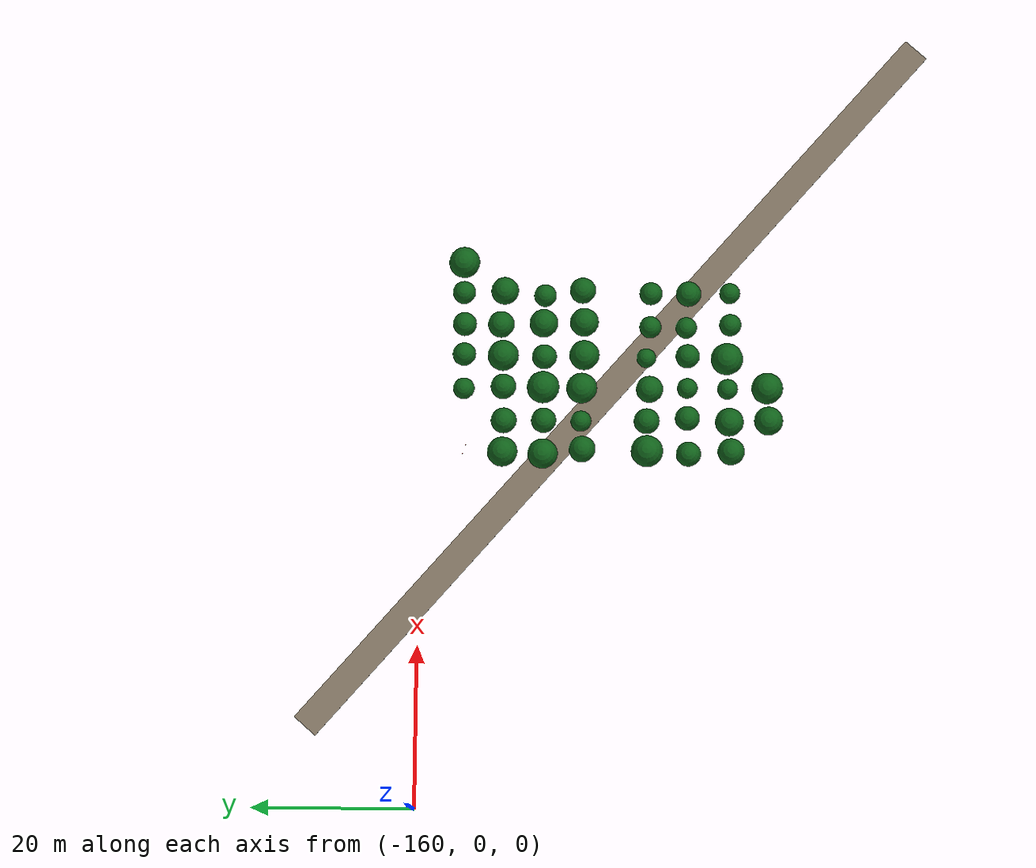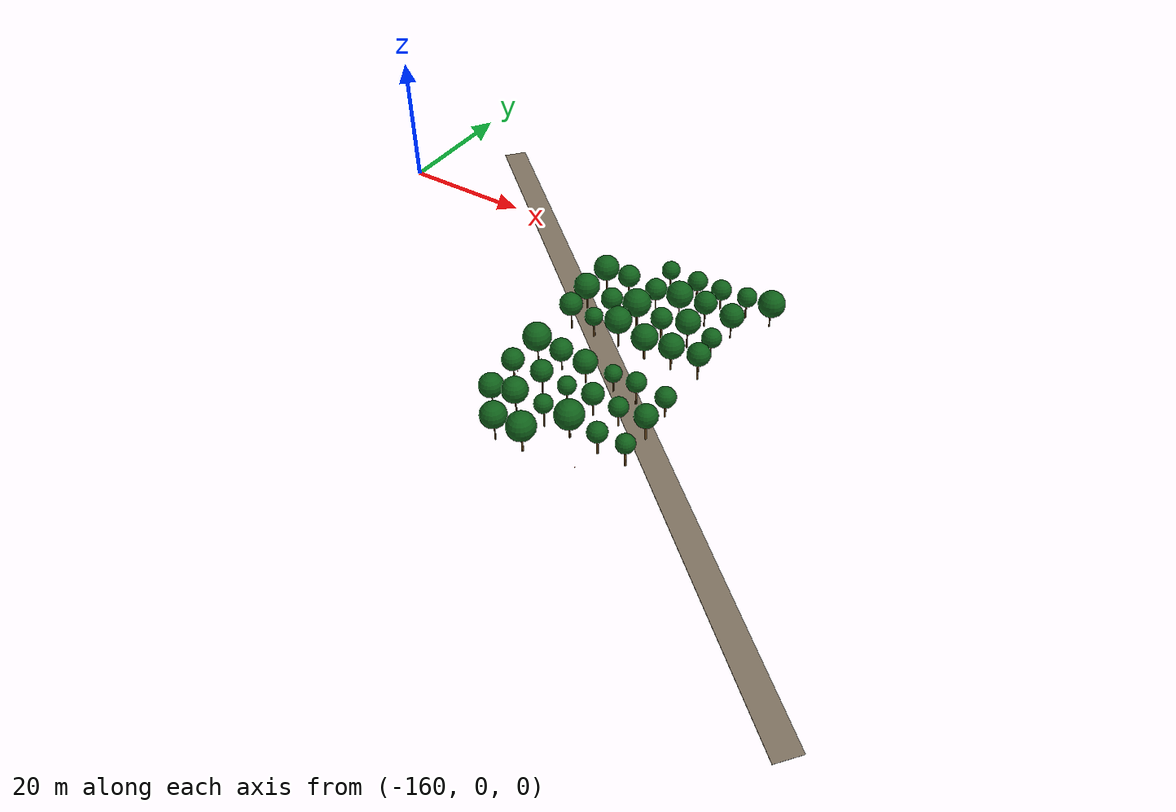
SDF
<sdf version="1.9">
 <world name="cheongsong_orchard">
  <model name="road_0">
   <static>true</static>
   <pose>-106.6 -24.3 0.02 0 0 -0.7179</pose>
   <link name="link">
    <collision name="collision">
     <geometry><box><size>115.3 3.5 0.04</size></box></geometry>
     <surface><friction><ode><mu>0.9</mu><mu2>0.9</mu2></ode></friction></surface>
    </collision>
    <visual name="visual">
     <geometry><box><size>115.3 3.5 0.04</size></box></geometry>
     <material><ambient>0.4 0.35 0.28 1</ambient><diffuse>0.5 0.45 0.38 1</diffuse></material>
    </visual>
   </link>
  </model>
  <model name="apple_tree_777">
   <static>true</static>
   <pose>-112.17 -43.07 0 0 0 0</pose>
   <link name="link">
    <collision name="trunk_col">
     <pose>0 0 1.27 0 0 0</pose>
     <geometry><cylinder><radius>0.088</radius><length>2.55</length></cylinder></geometry>
    </collision>
    <visual name="trunk_vis">
     <pose>0 0 1.27 0 0 0</pose>
     <geometry><cylinder><radius>0.088</radius><length>2.55</length></cylinder></geometry>
     <material><ambient>0.35 0.22 0.08 1</ambient><diffuse>0.45 0.30 0.12 1</diffuse></material>
    </visual>
    <collision name="canopy_col">
     <pose>0 0 4.33 0 0 0</pose>
     <geometry><sphere><radius>1.78</radius></sphere></geometry>
    </collision>
    <visual name="canopy_vis">
     <pose>0 0 4.33 0 0 0</pose>
     <geometry><sphere><radius>1.78</radius></sphere></geometry>
     <material><ambient>0.04 0.28 0.06 1</ambient><diffuse>0.06 0.38 0.10 1</diffuse></material>
    </visual>
   </link>
  </model>
  <model name="apple_tree_778">
   <static>true</static>
   <pose>-108.11 -42.90 0 0 0 0</pose>
   <link name="link">
    <collision name="trunk_col">
     <pose>0 0 1.21 0 0 0</pose>
     <geometry><cylinder><radius>0.128</radius><length>2.42</length></cylinder></geometry>
    </collision>
    <visual name="trunk_vis">
     <pose>0 0 1.21 0 0 0</pose>
     <geometry><cylinder><radius>0.128</radius><length>2.42</length></cylinder></geometry>
     <material><ambient>0.35 0.22 0.08 1</ambient><diffuse>0.45 0.30 0.12 1</diffuse></material>
    </visual>
    <collision name="canopy_col">
     <pose>0 0 4.37 0 0 0</pose>
     <geometry><sphere><radius>1.95</radius></sphere></geometry>
    </collision>
    <visual name="canopy_vis">
     <pose>0 0 4.37 0 0 0</pose>
     <geometry><sphere><radius>1.95</radius></sphere></geometry>
     <material><ambient>0.04 0.28 0.06 1</ambient><diffuse>0.06 0.38 0.10 1</diffuse></material>
    </visual>
   </link>
  </model>
  <model name="apple_tree_835">
   <static>true</static>
   <pose>-115.97 -38.48 0 0 0 0</pose>
   <link name="link">
    <collision name="trunk_col">
     <pose>0 0 1.03 0 0 0</pose>
     <geometry><cylinder><radius>0.092</radius><length>2.06</length></cylinder></geometry>
    </collision>
    <visual name="trunk_vis">
     <pose>0 0 1.03 0 0 0</pose>
     <geometry><cylinder><radius>0.092</radius><length>2.06</length></cylinder></geometry>
     <material><ambient>0.35 0.22 0.08 1</ambient><diffuse>0.45 0.30 0.12 1</diffuse></material>
    </visual>
    <collision name="canopy_col">
     <pose>0 0 3.73 0 0 0</pose>
     <geometry><sphere><radius>1.67</radius></sphere></geometry>
    </collision>
    <visual name="canopy_vis">
     <pose>0 0 3.73 0 0 0</pose>
     <geometry><sphere><radius>1.67</radius></sphere></geometry>
     <material><ambient>0.04 0.28 0.06 1</ambient><diffuse>0.06 0.38 0.10 1</diffuse></material>
    </visual>
   </link>
  </model>
  <model name="apple_tree_836">
   <static>true</static>
   <pose>-112.40 -38.22 0 0 0 0</pose>
   <link name="link">
    <collision name="trunk_col">
     <pose>0 0 1.37 0 0 0</pose>
     <geometry><cylinder><radius>0.098</radius><length>2.74</length></cylinder></geometry>
    </collision>
    <visual name="trunk_vis">
     <pose>0 0 1.37 0 0 0</pose>
     <geometry><cylinder><radius>0.098</radius><length>2.74</length></cylinder></geometry>
     <material><ambient>0.35 0.22 0.08 1</ambient><diffuse>0.45 0.30 0.12 1</diffuse></material>
    </visual>
    <collision name="canopy_col">
     <pose>0 0 4.50 0 0 0</pose>
     <geometry><sphere><radius>1.76</radius></sphere></geometry>
    </collision>
    <visual name="canopy_vis">
     <pose>0 0 4.50 0 0 0</pose>
     <geometry><sphere><radius>1.76</radius></sphere></geometry>
     <material><ambient>0.04 0.28 0.06 1</ambient><diffuse>0.06 0.38 0.10 1</diffuse></material>
    </visual>
   </link>
  </model>
  <model name="apple_tree_837">
   <static>true</static>
   <pose>-108.20 -38.01 0 0 0 0</pose>
   <link name="link">
    <collision name="trunk_col">
     <pose>0 0 1.40 0 0 0</pose>
     <geometry><cylinder><radius>0.104</radius><length>2.79</length></cylinder></geometry>
    </collision>
    <visual name="trunk_vis">
     <pose>0 0 1.40 0 0 0</pose>
     <geometry><cylinder><radius>0.104</radius><length>2.79</length></cylinder></geometry>
     <material><ambient>0.35 0.22 0.08 1</ambient><diffuse>0.45 0.30 0.12 1</diffuse></material>
    </visual>
    <collision name="canopy_col">
     <pose>0 0 4.06 0 0 0</pose>
     <geometry><sphere><radius>1.27</radius></sphere></geometry>
    </collision>
    <visual name="canopy_vis">
     <pose>0 0 4.06 0 0 0</pose>
     <geometry><sphere><radius>1.27</radius></sphere></geometry>
     <material><ambient>0.04 0.28 0.06 1</ambient><diffuse>0.06 0.38 0.10 1</diffuse></material>
    </visual>
   </link>
  </model>
  <model name="apple_tree_838">
   <static>true</static>
   <pose>-104.40 -37.93 0 0 0 0</pose>
   <link name="link">
    <collision name="trunk_col">
     <pose>0 0 1.05 0 0 0</pose>
     <geometry><cylinder><radius>0.115</radius><length>2.10</length></cylinder></geometry>
    </collision>
    <visual name="trunk_vis">
     <pose>0 0 1.05 0 0 0</pose>
     <geometry><cylinder><radius>0.115</radius><length>2.10</length></cylinder></geometry>
     <material><ambient>0.35 0.22 0.08 1</ambient><diffuse>0.45 0.30 0.12 1</diffuse></material>
    </visual>
    <collision name="canopy_col">
     <pose>0 0 4.10 0 0 0</pose>
     <geometry><sphere><radius>1.99</radius></sphere></geometry>
    </collision>
    <visual name="canopy_vis">
     <pose>0 0 4.10 0 0 0</pose>
     <geometry><sphere><radius>1.99</radius></sphere></geometry>
     <material><ambient>0.04 0.28 0.06 1</ambient><diffuse>0.06 0.38 0.10 1</diffuse></material>
    </visual>
   </link>
  </model>
  <model name="apple_tree_839">
   <static>true</static>
   <pose>-100.03 -38.35 0 0 0 0</pose>
   <link name="link">
    <collision name="trunk_col">
     <pose>0 0 1.19 0 0 0</pose>
     <geometry><cylinder><radius>0.125</radius><length>2.38</length></cylinder></geometry>
    </collision>
    <visual name="trunk_vis">
     <pose>0 0 1.19 0 0 0</pose>
     <geometry><cylinder><radius>0.125</radius><length>2.38</length></cylinder></geometry>
     <material><ambient>0.35 0.22 0.08 1</ambient><diffuse>0.45 0.30 0.12 1</diffuse></material>
    </visual>
    <collision name="canopy_col">
     <pose>0 0 3.75 0 0 0</pose>
     <geometry><sphere><radius>1.37</radius></sphere></geometry>
    </collision>
    <visual name="canopy_vis">
     <pose>0 0 3.75 0 0 0</pose>
     <geometry><sphere><radius>1.37</radius></sphere></geometry>
     <material><ambient>0.04 0.28 0.06 1</ambient><diffuse>0.06 0.38 0.10 1</diffuse></material>
    </visual>
   </link>
  </model>
  <model name="apple_tree_840">
   <static>true</static>
   <pose>-96.05 -38.28 0 0 0 0</pose>
   <link name="link">
    <collision name="trunk_col">
     <pose>0 0 1.29 0 0 0</pose>
     <geometry><cylinder><radius>0.133</radius><length>2.58</length></cylinder></geometry>
    </collision>
    <visual name="trunk_vis">
     <pose>0 0 1.29 0 0 0</pose>
     <geometry><cylinder><radius>0.133</radius><length>2.58</length></cylinder></geometry>
     <material><ambient>0.35 0.22 0.08 1</ambient><diffuse>0.45 0.30 0.12 1</diffuse></material>
    </visual>
    <collision name="canopy_col">
     <pose>0 0 3.87 0 0 0</pose>
     <geometry><sphere><radius>1.29</radius></sphere></geometry>
    </collision>
    <visual name="canopy_vis">
     <pose>0 0 3.87 0 0 0</pose>
     <geometry><sphere><radius>1.29</radius></sphere></geometry>
     <material><ambient>0.04 0.28 0.06 1</ambient><diffuse>0.06 0.38 0.10 1</diffuse></material>
    </visual>
   </link>
  </model>
  <model name="apple_tree_890">
   <static>true</static>
   <pose>-116.36 -33.21 0 0 0 0</pose>
   <link name="link">
    <collision name="trunk_col">
     <pose>0 0 1.20 0 0 0</pose>
     <geometry><cylinder><radius>0.081</radius><length>2.40</length></cylinder></geometry>
    </collision>
    <visual name="trunk_vis">
     <pose>0 0 1.20 0 0 0</pose>
     <geometry><cylinder><radius>0.081</radius><length>2.40</length></cylinder></geometry>
     <material><ambient>0.35 0.22 0.08 1</ambient><diffuse>0.45 0.30 0.12 1</diffuse></material>
    </visual>
    <collision name="canopy_col">
     <pose>0 0 3.94 0 0 0</pose>
     <geometry><sphere><radius>1.54</radius></sphere></geometry>
    </collision>
    <visual name="canopy_vis">
     <pose>0 0 3.94 0 0 0</pose>
     <geometry><sphere><radius>1.54</radius></sphere></geometry>
     <material><ambient>0.04 0.28 0.06 1</ambient><diffuse>0.06 0.38 0.10 1</diffuse></material>
    </visual>
   </link>
  </model>
  <model name="apple_tree_891">
   <static>true</static>
   <pose>-111.89 -33.05 0 0 0 0</pose>
   <link name="link">
    <collision name="trunk_col">
     <pose>0 0 1.22 0 0 0</pose>
     <geometry><cylinder><radius>0.110</radius><length>2.44</length></cylinder></geometry>
    </collision>
    <visual name="trunk_vis">
     <pose>0 0 1.22 0 0 0</pose>
     <geometry><cylinder><radius>0.110</radius><length>2.44</length></cylinder></geometry>
     <material><ambient>0.35 0.22 0.08 1</ambient><diffuse>0.45 0.30 0.12 1</diffuse></material>
    </visual>
    <collision name="canopy_col">
     <pose>0 0 3.96 0 0 0</pose>
     <geometry><sphere><radius>1.52</radius></sphere></geometry>
    </collision>
    <visual name="canopy_vis">
     <pose>0 0 3.96 0 0 0</pose>
     <geometry><sphere><radius>1.52</radius></sphere></geometry>
     <material><ambient>0.04 0.28 0.06 1</ambient><diffuse>0.06 0.38 0.10 1</diffuse></material>
    </visual>
   </link>
  </model>
  <model name="apple_tree_892">
   <static>true</static>
   <pose>-108.00 -33.07 0 0 0 0</pose>
   <link name="link">
    <collision name="trunk_col">
     <pose>0 0 1.02 0 0 0</pose>
     <geometry><cylinder><radius>0.115</radius><length>2.05</length></cylinder></geometry>
    </collision>
    <visual name="trunk_vis">
     <pose>0 0 1.02 0 0 0</pose>
     <geometry><cylinder><radius>0.115</radius><length>2.05</length></cylinder></geometry>
     <material><ambient>0.35 0.22 0.08 1</ambient><diffuse>0.45 0.30 0.12 1</diffuse></material>
    </visual>
    <collision name="canopy_col">
     <pose>0 0 3.31 0 0 0</pose>
     <geometry><sphere><radius>1.27</radius></sphere></geometry>
    </collision>
    <visual name="canopy_vis">
     <pose>0 0 3.31 0 0 0</pose>
     <geometry><sphere><radius>1.27</radius></sphere></geometry>
     <material><ambient>0.04 0.28 0.06 1</ambient><diffuse>0.06 0.38 0.10 1</diffuse></material>
    </visual>
   </link>
  </model>
  <model name="apple_tree_893">
   <static>true</static>
   <pose>-104.04 -33.07 0 0 0 0</pose>
   <link name="link">
    <collision name="trunk_col">
     <pose>0 0 1.17 0 0 0</pose>
     <geometry><cylinder><radius>0.095</radius><length>2.35</length></cylinder></geometry>
    </collision>
    <visual name="trunk_vis">
     <pose>0 0 1.17 0 0 0</pose>
     <geometry><cylinder><radius>0.095</radius><length>2.35</length></cylinder></geometry>
     <material><ambient>0.35 0.22 0.08 1</ambient><diffuse>0.45 0.30 0.12 1</diffuse></material>
    </visual>
    <collision name="canopy_col">
     <pose>0 0 3.83 0 0 0</pose>
     <geometry><sphere><radius>1.49</radius></sphere></geometry>
    </collision>
    <visual name="canopy_vis">
     <pose>0 0 3.83 0 0 0</pose>
     <geometry><sphere><radius>1.49</radius></sphere></geometry>
     <material><ambient>0.04 0.28 0.06 1</ambient><diffuse>0.06 0.38 0.10 1</diffuse></material>
    </visual>
   </link>
  </model>
  <model name="apple_tree_894">
   <static>true</static>
   <pose>-100.35 -32.89 0 0 0 0</pose>
   <link name="link">
    <collision name="trunk_col">
     <pose>0 0 0.98 0 0 0</pose>
     <geometry><cylinder><radius>0.127</radius><length>1.97</length></cylinder></geometry>
    </collision>
    <visual name="trunk_vis">
     <pose>0 0 0.98 0 0 0</pose>
     <geometry><cylinder><radius>0.127</radius><length>1.97</length></cylinder></geometry>
     <material><ambient>0.35 0.22 0.08 1</ambient><diffuse>0.45 0.30 0.12 1</diffuse></material>
    </visual>
    <collision name="canopy_col">
     <pose>0 0 3.29 0 0 0</pose>
     <geometry><sphere><radius>1.33</radius></sphere></geometry>
    </collision>
    <visual name="canopy_vis">
     <pose>0 0 3.29 0 0 0</pose>
     <geometry><sphere><radius>1.33</radius></sphere></geometry>
     <material><ambient>0.04 0.28 0.06 1</ambient><diffuse>0.06 0.38 0.10 1</diffuse></material>
    </visual>
   </link>
  </model>
  <model name="apple_tree_895">
   <static>true</static>
   <pose>-96.21 -33.15 0 0 0 0</pose>
   <link name="link">
    <collision name="trunk_col">
     <pose>0 0 1.26 0 0 0</pose>
     <geometry><cylinder><radius>0.148</radius><length>2.52</length></cylinder></geometry>
    </collision>
    <visual name="trunk_vis">
     <pose>0 0 1.26 0 0 0</pose>
     <geometry><cylinder><radius>0.148</radius><length>2.52</length></cylinder></geometry>
     <material><ambient>0.35 0.22 0.08 1</ambient><diffuse>0.45 0.30 0.12 1</diffuse></material>
    </visual>
    <collision name="canopy_col">
     <pose>0 0 4.09 0 0 0</pose>
     <geometry><sphere><radius>1.57</radius></sphere></geometry>
    </collision>
    <visual name="canopy_vis">
     <pose>0 0 4.09 0 0 0</pose>
     <geometry><sphere><radius>1.57</radius></sphere></geometry>
     <material><ambient>0.04 0.28 0.06 1</ambient><diffuse>0.06 0.38 0.10 1</diffuse></material>
    </visual>
   </link>
  </model>
  <model name="apple_tree_942">
   <static>true</static>
   <pose>-116.07 -28.08 0 0 0 0</pose>
   <link name="link">
    <collision name="trunk_col">
     <pose>0 0 1.12 0 0 0</pose>
     <geometry><cylinder><radius>0.095</radius><length>2.25</length></cylinder></geometry>
    </collision>
    <visual name="trunk_vis">
     <pose>0 0 1.12 0 0 0</pose>
     <geometry><cylinder><radius>0.095</radius><length>2.25</length></cylinder></geometry>
     <material><ambient>0.35 0.22 0.08 1</ambient><diffuse>0.45 0.30 0.12 1</diffuse></material>
    </visual>
    <collision name="canopy_col">
     <pose>0 0 4.23 0 0 0</pose>
     <geometry><sphere><radius>1.98</radius></sphere></geometry>
    </collision>
    <visual name="canopy_vis">
     <pose>0 0 4.23 0 0 0</pose>
     <geometry><sphere><radius>1.98</radius></sphere></geometry>
     <material><ambient>0.04 0.28 0.06 1</ambient><diffuse>0.06 0.38 0.10 1</diffuse></material>
    </visual>
   </link>
  </model>
  <model name="apple_tree_943">
   <static>true</static>
   <pose>-112.23 -28.03 0 0 0 0</pose>
   <link name="link">
    <collision name="trunk_col">
     <pose>0 0 1.03 0 0 0</pose>
     <geometry><cylinder><radius>0.081</radius><length>2.06</length></cylinder></geometry>
    </collision>
    <visual name="trunk_vis">
     <pose>0 0 1.03 0 0 0</pose>
     <geometry><cylinder><radius>0.081</radius><length>2.06</length></cylinder></geometry>
     <material><ambient>0.35 0.22 0.08 1</ambient><diffuse>0.45 0.30 0.12 1</diffuse></material>
    </visual>
    <collision name="canopy_col">
     <pose>0 0 3.65 0 0 0</pose>
     <geometry><sphere><radius>1.59</radius></sphere></geometry>
    </collision>
    <visual name="canopy_vis">
     <pose>0 0 3.65 0 0 0</pose>
     <geometry><sphere><radius>1.59</radius></sphere></geometry>
     <material><ambient>0.04 0.28 0.06 1</ambient><diffuse>0.06 0.38 0.10 1</diffuse></material>
    </visual>
   </link>
  </model>
  <model name="apple_tree_944">
   <static>true</static>
   <pose>-108.23 -28.37 0 0 0 0</pose>
   <link name="link">
    <collision name="trunk_col">
     <pose>0 0 0.99 0 0 0</pose>
     <geometry><cylinder><radius>0.126</radius><length>1.98</length></cylinder></geometry>
    </collision>
    <visual name="trunk_vis">
     <pose>0 0 0.99 0 0 0</pose>
     <geometry><cylinder><radius>0.126</radius><length>1.98</length></cylinder></geometry>
     <material><ambient>0.35 0.22 0.08 1</ambient><diffuse>0.45 0.30 0.12 1</diffuse></material>
    </visual>
    <collision name="canopy_col">
     <pose>0 0 3.66 0 0 0</pose>
     <geometry><sphere><radius>1.67</radius></sphere></geometry>
    </collision>
    <visual name="canopy_vis">
     <pose>0 0 3.66 0 0 0</pose>
     <geometry><sphere><radius>1.67</radius></sphere></geometry>
     <material><ambient>0.04 0.28 0.06 1</ambient><diffuse>0.06 0.38 0.10 1</diffuse></material>
    </visual>
   </link>
  </model>
  <model name="apple_tree_945">
   <static>true</static>
   <pose>-104.21 -27.94 0 0 0 0</pose>
   <link name="link">
    <collision name="trunk_col">
     <pose>0 0 1.00 0 0 0</pose>
     <geometry><cylinder><radius>0.101</radius><length>1.99</length></cylinder></geometry>
    </collision>
    <visual name="trunk_vis">
     <pose>0 0 1.00 0 0 0</pose>
     <geometry><cylinder><radius>0.101</radius><length>1.99</length></cylinder></geometry>
     <material><ambient>0.35 0.22 0.08 1</ambient><diffuse>0.45 0.30 0.12 1</diffuse></material>
    </visual>
    <collision name="canopy_col">
     <pose>0 0 3.20 0 0 0</pose>
     <geometry><sphere><radius>1.21</radius></sphere></geometry>
    </collision>
    <visual name="canopy_vis">
     <pose>0 0 3.20 0 0 0</pose>
     <geometry><sphere><radius>1.21</radius></sphere></geometry>
     <material><ambient>0.04 0.28 0.06 1</ambient><diffuse>0.06 0.38 0.10 1</diffuse></material>
    </visual>
   </link>
  </model>
  <model name="apple_tree_946">
   <static>true</static>
   <pose>-100.43 -28.42 0 0 0 0</pose>
   <link name="link">
    <collision name="trunk_col">
     <pose>0 0 1.27 0 0 0</pose>
     <geometry><cylinder><radius>0.121</radius><length>2.54</length></cylinder></geometry>
    </collision>
    <visual name="trunk_vis">
     <pose>0 0 1.27 0 0 0</pose>
     <geometry><cylinder><radius>0.121</radius><length>2.54</length></cylinder></geometry>
     <material><ambient>0.35 0.22 0.08 1</ambient><diffuse>0.45 0.30 0.12 1</diffuse></material>
    </visual>
    <collision name="canopy_col">
     <pose>0 0 3.90 0 0 0</pose>
     <geometry><sphere><radius>1.36</radius></sphere></geometry>
    </collision>
    <visual name="canopy_vis">
     <pose>0 0 3.90 0 0 0</pose>
     <geometry><sphere><radius>1.36</radius></sphere></geometry>
     <material><ambient>0.04 0.28 0.06 1</ambient><diffuse>0.06 0.38 0.10 1</diffuse></material>
    </visual>
   </link>
  </model>
  <model name="apple_tree_947">
   <static>true</static>
   <pose>-96.09 -28.47 0 0 0 0</pose>
   <link name="link">
    <collision name="trunk_col">
     <pose>0 0 1.05 0 0 0</pose>
     <geometry><cylinder><radius>0.132</radius><length>2.09</length></cylinder></geometry>
    </collision>
    <visual name="trunk_vis">
     <pose>0 0 1.05 0 0 0</pose>
     <geometry><cylinder><radius>0.132</radius><length>2.09</length></cylinder></geometry>
     <material><ambient>0.35 0.22 0.08 1</ambient><diffuse>0.45 0.30 0.12 1</diffuse></material>
    </visual>
    <collision name="canopy_col">
     <pose>0 0 3.51 0 0 0</pose>
     <geometry><sphere><radius>1.42</radius></sphere></geometry>
    </collision>
    <visual name="canopy_vis">
     <pose>0 0 3.51 0 0 0</pose>
     <geometry><sphere><radius>1.42</radius></sphere></geometry>
     <material><ambient>0.04 0.28 0.06 1</ambient><diffuse>0.06 0.38 0.10 1</diffuse></material>
    </visual>
   </link>
  </model>
  <model name="apple_tree_999">
   <static>true</static>
   <pose>-115.92 -20.08 0 0 0 0</pose>
   <link name="link">
    <collision name="trunk_col">
     <pose>0 0 1.36 0 0 0</pose>
     <geometry><cylinder><radius>0.097</radius><length>2.72</length></cylinder></geometry>
    </collision>
    <visual name="trunk_vis">
     <pose>0 0 1.36 0 0 0</pose>
     <geometry><cylinder><radius>0.097</radius><length>2.72</length></cylinder></geometry>
     <material><ambient>0.35 0.22 0.08 1</ambient><diffuse>0.45 0.30 0.12 1</diffuse></material>
    </visual>
    <collision name="canopy_col">
     <pose>0 0 4.36 0 0 0</pose>
     <geometry><sphere><radius>1.64</radius></sphere></geometry>
    </collision>
    <visual name="canopy_vis">
     <pose>0 0 4.36 0 0 0</pose>
     <geometry><sphere><radius>1.64</radius></sphere></geometry>
     <material><ambient>0.04 0.28 0.06 1</ambient><diffuse>0.06 0.38 0.10 1</diffuse></material>
    </visual>
   </link>
  </model>
  <model name="apple_tree_1000">
   <static>true</static>
   <pose>-112.30 -19.91 0 0 0 0</pose>
   <link name="link">
    <collision name="trunk_col">
     <pose>0 0 1.15 0 0 0</pose>
     <geometry><cylinder><radius>0.137</radius><length>2.30</length></cylinder></geometry>
    </collision>
    <visual name="trunk_vis">
     <pose>0 0 1.15 0 0 0</pose>
     <geometry><cylinder><radius>0.137</radius><length>2.30</length></cylinder></geometry>
     <material><ambient>0.35 0.22 0.08 1</ambient><diffuse>0.45 0.30 0.12 1</diffuse></material>
    </visual>
    <collision name="canopy_col">
     <pose>0 0 3.60 0 0 0</pose>
     <geometry><sphere><radius>1.30</radius></sphere></geometry>
    </collision>
    <visual name="canopy_vis">
     <pose>0 0 3.60 0 0 0</pose>
     <geometry><sphere><radius>1.30</radius></sphere></geometry>
     <material><ambient>0.04 0.28 0.06 1</ambient><diffuse>0.06 0.38 0.10 1</diffuse></material>
    </visual>
   </link>
  </model>
  <model name="apple_tree_1001">
   <static>true</static>
   <pose>-108.36 -19.96 0 0 0 0</pose>
   <link name="link">
    <collision name="trunk_col">
     <pose>0 0 1.42 0 0 0</pose>
     <geometry><cylinder><radius>0.124</radius><length>2.84</length></cylinder></geometry>
    </collision>
    <visual name="trunk_vis">
     <pose>0 0 1.42 0 0 0</pose>
     <geometry><cylinder><radius>0.124</radius><length>2.84</length></cylinder></geometry>
     <material><ambient>0.35 0.22 0.08 1</ambient><diffuse>0.45 0.30 0.12 1</diffuse></material>
    </visual>
    <collision name="canopy_col">
     <pose>0 0 4.75 0 0 0</pose>
     <geometry><sphere><radius>1.90</radius></sphere></geometry>
    </collision>
    <visual name="canopy_vis">
     <pose>0 0 4.75 0 0 0</pose>
     <geometry><sphere><radius>1.90</radius></sphere></geometry>
     <material><ambient>0.04 0.28 0.06 1</ambient><diffuse>0.06 0.38 0.10 1</diffuse></material>
    </visual>
   </link>
  </model>
  <model name="apple_tree_1002">
   <static>true</static>
   <pose>-104.03 -20.25 0 0 0 0</pose>
   <link name="link">
    <collision name="trunk_col">
     <pose>0 0 0.99 0 0 0</pose>
     <geometry><cylinder><radius>0.141</radius><length>1.98</length></cylinder></geometry>
    </collision>
    <visual name="trunk_vis">
     <pose>0 0 0.99 0 0 0</pose>
     <geometry><cylinder><radius>0.141</radius><length>1.98</length></cylinder></geometry>
     <material><ambient>0.35 0.22 0.08 1</ambient><diffuse>0.45 0.30 0.12 1</diffuse></material>
    </visual>
    <collision name="canopy_col">
     <pose>0 0 3.84 0 0 0</pose>
     <geometry><sphere><radius>1.86</radius></sphere></geometry>
    </collision>
    <visual name="canopy_vis">
     <pose>0 0 3.84 0 0 0</pose>
     <geometry><sphere><radius>1.86</radius></sphere></geometry>
     <material><ambient>0.04 0.28 0.06 1</ambient><diffuse>0.06 0.38 0.10 1</diffuse></material>
    </visual>
   </link>
  </model>
  <model name="apple_tree_1003">
   <static>true</static>
   <pose>-99.93 -20.21 0 0 0 0</pose>
   <link name="link">
    <collision name="trunk_col">
     <pose>0 0 1.18 0 0 0</pose>
     <geometry><cylinder><radius>0.139</radius><length>2.35</length></cylinder></geometry>
    </collision>
    <visual name="trunk_vis">
     <pose>0 0 1.18 0 0 0</pose>
     <geometry><cylinder><radius>0.139</radius><length>2.35</length></cylinder></geometry>
     <material><ambient>0.35 0.22 0.08 1</ambient><diffuse>0.45 0.30 0.12 1</diffuse></material>
    </visual>
    <collision name="canopy_col">
     <pose>0 0 4.13 0 0 0</pose>
     <geometry><sphere><radius>1.77</radius></sphere></geometry>
    </collision>
    <visual name="canopy_vis">
     <pose>0 0 4.13 0 0 0</pose>
     <geometry><sphere><radius>1.77</radius></sphere></geometry>
     <material><ambient>0.04 0.28 0.06 1</ambient><diffuse>0.06 0.38 0.10 1</diffuse></material>
    </visual>
   </link>
  </model>
  <model name="apple_tree_1004">
   <static>true</static>
   <pose>-95.96 -20.00 0 0 0 0</pose>
   <link name="link">
    <collision name="trunk_col">
     <pose>0 0 1.38 0 0 0</pose>
     <geometry><cylinder><radius>0.129</radius><length>2.75</length></cylinder></geometry>
    </collision>
    <visual name="trunk_vis">
     <pose>0 0 1.38 0 0 0</pose>
     <geometry><cylinder><radius>0.129</radius><length>2.75</length></cylinder></geometry>
     <material><ambient>0.35 0.22 0.08 1</ambient><diffuse>0.45 0.30 0.12 1</diffuse></material>
    </visual>
    <collision name="canopy_col">
     <pose>0 0 4.36 0 0 0</pose>
     <geometry><sphere><radius>1.61</radius></sphere></geometry>
    </collision>
    <visual name="canopy_vis">
     <pose>0 0 4.36 0 0 0</pose>
     <geometry><sphere><radius>1.61</radius></sphere></geometry>
     <material><ambient>0.04 0.28 0.06 1</ambient><diffuse>0.06 0.38 0.10 1</diffuse></material>
    </visual>
   </link>
  </model>
  <model name="apple_tree_1058">
   <static>true</static>
   <pose>-116.48 -15.22 0 0 0 0</pose>
   <link name="link">
    <collision name="trunk_col">
     <pose>0 0 1.09 0 0 0</pose>
     <geometry><cylinder><radius>0.101</radius><length>2.19</length></cylinder></geometry>
    </collision>
    <visual name="trunk_vis">
     <pose>0 0 1.09 0 0 0</pose>
     <geometry><cylinder><radius>0.101</radius><length>2.19</length></cylinder></geometry>
     <material><ambient>0.35 0.22 0.08 1</ambient><diffuse>0.45 0.30 0.12 1</diffuse></material>
    </visual>
    <collision name="canopy_col">
     <pose>0 0 4.05 0 0 0</pose>
     <geometry><sphere><radius>1.86</radius></sphere></geometry>
    </collision>
    <visual name="canopy_vis">
     <pose>0 0 4.05 0 0 0</pose>
     <geometry><sphere><radius>1.86</radius></sphere></geometry>
     <material><ambient>0.04 0.28 0.06 1</ambient><diffuse>0.06 0.38 0.10 1</diffuse></material>
    </visual>
   </link>
  </model>
  <model name="apple_tree_1059">
   <static>true</static>
   <pose>-112.25 -15.29 0 0 0 0</pose>
   <link name="link">
    <collision name="trunk_col">
     <pose>0 0 1.03 0 0 0</pose>
     <geometry><cylinder><radius>0.139</radius><length>2.05</length></cylinder></geometry>
    </collision>
    <visual name="trunk_vis">
     <pose>0 0 1.03 0 0 0</pose>
     <geometry><cylinder><radius>0.139</radius><length>2.05</length></cylinder></geometry>
     <material><ambient>0.35 0.22 0.08 1</ambient><diffuse>0.45 0.30 0.12 1</diffuse></material>
    </visual>
    <collision name="canopy_col">
     <pose>0 0 3.60 0 0 0</pose>
     <geometry><sphere><radius>1.55</radius></sphere></geometry>
    </collision>
    <visual name="canopy_vis">
     <pose>0 0 3.60 0 0 0</pose>
     <geometry><sphere><radius>1.55</radius></sphere></geometry>
     <material><ambient>0.04 0.28 0.06 1</ambient><diffuse>0.06 0.38 0.10 1</diffuse></material>
    </visual>
   </link>
  </model>
  <model name="apple_tree_1060">
   <static>true</static>
   <pose>-108.24 -15.19 0 0 0 0</pose>
   <link name="link">
    <collision name="trunk_col">
     <pose>0 0 1.26 0 0 0</pose>
     <geometry><cylinder><radius>0.131</radius><length>2.51</length></cylinder></geometry>
    </collision>
    <visual name="trunk_vis">
     <pose>0 0 1.26 0 0 0</pose>
     <geometry><cylinder><radius>0.131</radius><length>2.51</length></cylinder></geometry>
     <material><ambient>0.35 0.22 0.08 1</ambient><diffuse>0.45 0.30 0.12 1</diffuse></material>
    </visual>
    <collision name="canopy_col">
     <pose>0 0 4.51 0 0 0</pose>
     <geometry><sphere><radius>2.00</radius></sphere></geometry>
    </collision>
    <visual name="canopy_vis">
     <pose>0 0 4.51 0 0 0</pose>
     <geometry><sphere><radius>2.00</radius></sphere></geometry>
     <material><ambient>0.04 0.28 0.06 1</ambient><diffuse>0.06 0.38 0.10 1</diffuse></material>
    </visual>
   </link>
  </model>
  <model name="apple_tree_1061">
   <static>true</static>
   <pose>-104.24 -15.30 0 0 0 0</pose>
   <link name="link">
    <collision name="trunk_col">
     <pose>0 0 1.01 0 0 0</pose>
     <geometry><cylinder><radius>0.143</radius><length>2.01</length></cylinder></geometry>
    </collision>
    <visual name="trunk_vis">
     <pose>0 0 1.01 0 0 0</pose>
     <geometry><cylinder><radius>0.143</radius><length>2.01</length></cylinder></geometry>
     <material><ambient>0.35 0.22 0.08 1</ambient><diffuse>0.45 0.30 0.12 1</diffuse></material>
    </visual>
    <collision name="canopy_col">
     <pose>0 0 3.55 0 0 0</pose>
     <geometry><sphere><radius>1.53</radius></sphere></geometry>
    </collision>
    <visual name="canopy_vis">
     <pose>0 0 3.55 0 0 0</pose>
     <geometry><sphere><radius>1.53</radius></sphere></geometry>
     <material><ambient>0.04 0.28 0.06 1</ambient><diffuse>0.06 0.38 0.10 1</diffuse></material>
    </visual>
   </link>
  </model>
  <model name="apple_tree_1062">
   <static>true</static>
   <pose>-100.21 -15.19 0 0 0 0</pose>
   <link name="link">
    <collision name="trunk_col">
     <pose>0 0 1.43 0 0 0</pose>
     <geometry><cylinder><radius>0.104</radius><length>2.87</length></cylinder></geometry>
    </collision>
    <visual name="trunk_vis">
     <pose>0 0 1.43 0 0 0</pose>
     <geometry><cylinder><radius>0.104</radius><length>2.87</length></cylinder></geometry>
     <material><ambient>0.35 0.22 0.08 1</ambient><diffuse>0.45 0.30 0.12 1</diffuse></material>
    </visual>
    <collision name="canopy_col">
     <pose>0 0 4.62 0 0 0</pose>
     <geometry><sphere><radius>1.76</radius></sphere></geometry>
    </collision>
    <visual name="canopy_vis">
     <pose>0 0 4.62 0 0 0</pose>
     <geometry><sphere><radius>1.76</radius></sphere></geometry>
     <material><ambient>0.04 0.28 0.06 1</ambient><diffuse>0.06 0.38 0.10 1</diffuse></material>
    </visual>
   </link>
  </model>
  <model name="apple_tree_1063">
   <static>true</static>
   <pose>-96.48 -15.32 0 0 0 0</pose>
   <link name="link">
    <collision name="trunk_col">
     <pose>0 0 1.07 0 0 0</pose>
     <geometry><cylinder><radius>0.104</radius><length>2.14</length></cylinder></geometry>
    </collision>
    <visual name="trunk_vis">
     <pose>0 0 1.07 0 0 0</pose>
     <geometry><cylinder><radius>0.104</radius><length>2.14</length></cylinder></geometry>
     <material><ambient>0.35 0.22 0.08 1</ambient><diffuse>0.45 0.30 0.12 1</diffuse></material>
    </visual>
    <collision name="canopy_col">
     <pose>0 0 3.52 0 0 0</pose>
     <geometry><sphere><radius>1.39</radius></sphere></geometry>
    </collision>
    <visual name="canopy_vis">
     <pose>0 0 3.52 0 0 0</pose>
     <geometry><sphere><radius>1.39</radius></sphere></geometry>
     <material><ambient>0.04 0.28 0.06 1</ambient><diffuse>0.06 0.38 0.10 1</diffuse></material>
    </visual>
   </link>
  </model>
  <model name="apple_tree_1115">
   <static>true</static>
   <pose>-116.30 -10.24 0 0 0 0</pose>
   <link name="link">
    <collision name="trunk_col">
     <pose>0 0 1.13 0 0 0</pose>
     <geometry><cylinder><radius>0.106</radius><length>2.27</length></cylinder></geometry>
    </collision>
    <visual name="trunk_vis">
     <pose>0 0 1.13 0 0 0</pose>
     <geometry><cylinder><radius>0.106</radius><length>2.27</length></cylinder></geometry>
     <material><ambient>0.35 0.22 0.08 1</ambient><diffuse>0.45 0.30 0.12 1</diffuse></material>
    </visual>
    <collision name="canopy_col">
     <pose>0 0 4.13 0 0 0</pose>
     <geometry><sphere><radius>1.86</radius></sphere></geometry>
    </collision>
    <visual name="canopy_vis">
     <pose>0 0 4.13 0 0 0</pose>
     <geometry><sphere><radius>1.86</radius></sphere></geometry>
     <material><ambient>0.04 0.28 0.06 1</ambient><diffuse>0.06 0.38 0.10 1</diffuse></material>
    </visual>
   </link>
  </model>
  <model name="apple_tree_1116">
   <static>true</static>
   <pose>-112.42 -10.37 0 0 0 0</pose>
   <link name="link">
    <collision name="trunk_col">
     <pose>0 0 1.34 0 0 0</pose>
     <geometry><cylinder><radius>0.121</radius><length>2.68</length></cylinder></geometry>
    </collision>
    <visual name="trunk_vis">
     <pose>0 0 1.34 0 0 0</pose>
     <geometry><cylinder><radius>0.121</radius><length>2.68</length></cylinder></geometry>
     <material><ambient>0.35 0.22 0.08 1</ambient><diffuse>0.45 0.30 0.12 1</diffuse></material>
    </visual>
    <collision name="canopy_col">
     <pose>0 0 4.28 0 0 0</pose>
     <geometry><sphere><radius>1.59</radius></sphere></geometry>
    </collision>
    <visual name="canopy_vis">
     <pose>0 0 4.28 0 0 0</pose>
     <geometry><sphere><radius>1.59</radius></sphere></geometry>
     <material><ambient>0.04 0.28 0.06 1</ambient><diffuse>0.06 0.38 0.10 1</diffuse></material>
    </visual>
   </link>
  </model>
  <model name="apple_tree_1117">
   <static>true</static>
   <pose>-108.04 -10.26 0 0 0 0</pose>
   <link name="link">
    <collision name="trunk_col">
     <pose>0 0 1.03 0 0 0</pose>
     <geometry><cylinder><radius>0.084</radius><length>2.06</length></cylinder></geometry>
    </collision>
    <visual name="trunk_vis">
     <pose>0 0 1.03 0 0 0</pose>
     <geometry><cylinder><radius>0.084</radius><length>2.06</length></cylinder></geometry>
     <material><ambient>0.35 0.22 0.08 1</ambient><diffuse>0.45 0.30 0.12 1</diffuse></material>
    </visual>
    <collision name="canopy_col">
     <pose>0 0 3.63 0 0 0</pose>
     <geometry><sphere><radius>1.57</radius></sphere></geometry>
    </collision>
    <visual name="canopy_vis">
     <pose>0 0 3.63 0 0 0</pose>
     <geometry><sphere><radius>1.57</radius></sphere></geometry>
     <material><ambient>0.04 0.28 0.06 1</ambient><diffuse>0.06 0.38 0.10 1</diffuse></material>
    </visual>
   </link>
  </model>
  <model name="apple_tree_1118">
   <static>true</static>
   <pose>-104.25 -10.20 0 0 0 0</pose>
   <link name="link">
    <collision name="trunk_col">
     <pose>0 0 1.17 0 0 0</pose>
     <geometry><cylinder><radius>0.096</radius><length>2.35</length></cylinder></geometry>
    </collision>
    <visual name="trunk_vis">
     <pose>0 0 1.17 0 0 0</pose>
     <geometry><cylinder><radius>0.096</radius><length>2.35</length></cylinder></geometry>
     <material><ambient>0.35 0.22 0.08 1</ambient><diffuse>0.45 0.30 0.12 1</diffuse></material>
    </visual>
    <collision name="canopy_col">
     <pose>0 0 4.26 0 0 0</pose>
     <geometry><sphere><radius>1.91</radius></sphere></geometry>
    </collision>
    <visual name="canopy_vis">
     <pose>0 0 4.26 0 0 0</pose>
     <geometry><sphere><radius>1.91</radius></sphere></geometry>
     <material><ambient>0.04 0.28 0.06 1</ambient><diffuse>0.06 0.38 0.10 1</diffuse></material>
    </visual>
   </link>
  </model>
  <model name="apple_tree_1119">
   <static>true</static>
   <pose>-100.33 -9.91 0 0 0 0</pose>
   <link name="link">
    <collision name="trunk_col">
     <pose>0 0 1.30 0 0 0</pose>
     <geometry><cylinder><radius>0.097</radius><length>2.61</length></cylinder></geometry>
    </collision>
    <visual name="trunk_vis">
     <pose>0 0 1.30 0 0 0</pose>
     <geometry><cylinder><radius>0.097</radius><length>2.61</length></cylinder></geometry>
     <material><ambient>0.35 0.22 0.08 1</ambient><diffuse>0.45 0.30 0.12 1</diffuse></material>
    </visual>
    <collision name="canopy_col">
     <pose>0 0 4.25 0 0 0</pose>
     <geometry><sphere><radius>1.64</radius></sphere></geometry>
    </collision>
    <visual name="canopy_vis">
     <pose>0 0 4.25 0 0 0</pose>
     <geometry><sphere><radius>1.64</radius></sphere></geometry>
     <material><ambient>0.04 0.28 0.06 1</ambient><diffuse>0.06 0.38 0.10 1</diffuse></material>
    </visual>
   </link>
  </model>
  <model name="apple_tree_1120">
   <static>true</static>
   <pose>-96.02 -10.31 0 0 0 0</pose>
   <link name="link">
    <collision name="trunk_col">
     <pose>0 0 1.17 0 0 0</pose>
     <geometry><cylinder><radius>0.086</radius><length>2.35</length></cylinder></geometry>
    </collision>
    <visual name="trunk_vis">
     <pose>0 0 1.17 0 0 0</pose>
     <geometry><cylinder><radius>0.086</radius><length>2.35</length></cylinder></geometry>
     <material><ambient>0.35 0.22 0.08 1</ambient><diffuse>0.45 0.30 0.12 1</diffuse></material>
    </visual>
    <collision name="canopy_col">
     <pose>0 0 4.06 0 0 0</pose>
     <geometry><sphere><radius>1.71</radius></sphere></geometry>
    </collision>
    <visual name="canopy_vis">
     <pose>0 0 4.06 0 0 0</pose>
     <geometry><sphere><radius>1.71</radius></sphere></geometry>
     <material><ambient>0.04 0.28 0.06 1</ambient><diffuse>0.06 0.38 0.10 1</diffuse></material>
    </visual>
   </link>
  </model>
  <model name="apple_tree_1172">
   <static>true</static>
   <pose>-108.35 -5.36 0 0 0 0</pose>
   <link name="link">
    <collision name="trunk_col">
     <pose>0 0 1.18 0 0 0</pose>
     <geometry><cylinder><radius>0.106</radius><length>2.36</length></cylinder></geometry>
    </collision>
    <visual name="trunk_vis">
     <pose>0 0 1.18 0 0 0</pose>
     <geometry><cylinder><radius>0.106</radius><length>2.36</length></cylinder></geometry>
     <material><ambient>0.35 0.22 0.08 1</ambient><diffuse>0.45 0.30 0.12 1</diffuse></material>
    </visual>
    <collision name="canopy_col">
     <pose>0 0 3.69 0 0 0</pose>
     <geometry><sphere><radius>1.33</radius></sphere></geometry>
    </collision>
    <visual name="canopy_vis">
     <pose>0 0 3.69 0 0 0</pose>
     <geometry><sphere><radius>1.33</radius></sphere></geometry>
     <material><ambient>0.04 0.28 0.06 1</ambient><diffuse>0.06 0.38 0.10 1</diffuse></material>
    </visual>
   </link>
  </model>
  <model name="apple_tree_1173">
   <static>true</static>
   <pose>-103.98 -5.34 0 0 0 0</pose>
   <link name="link">
    <collision name="trunk_col">
     <pose>0 0 1.02 0 0 0</pose>
     <geometry><cylinder><radius>0.133</radius><length>2.03</length></cylinder></geometry>
    </collision>
    <visual name="trunk_vis">
     <pose>0 0 1.02 0 0 0</pose>
     <geometry><cylinder><radius>0.133</radius><length>2.03</length></cylinder></geometry>
     <material><ambient>0.35 0.22 0.08 1</ambient><diffuse>0.45 0.30 0.12 1</diffuse></material>
    </visual>
    <collision name="canopy_col">
     <pose>0 0 3.47 0 0 0</pose>
     <geometry><sphere><radius>1.44</radius></sphere></geometry>
    </collision>
    <visual name="canopy_vis">
     <pose>0 0 3.47 0 0 0</pose>
     <geometry><sphere><radius>1.44</radius></sphere></geometry>
     <material><ambient>0.04 0.28 0.06 1</ambient><diffuse>0.06 0.38 0.10 1</diffuse></material>
    </visual>
   </link>
  </model>
  <model name="apple_tree_1174">
   <static>true</static>
   <pose>-100.18 -5.35 0 0 0 0</pose>
   <link name="link">
    <collision name="trunk_col">
     <pose>0 0 1.00 0 0 0</pose>
     <geometry><cylinder><radius>0.116</radius><length>1.99</length></cylinder></geometry>
    </collision>
    <visual name="trunk_vis">
     <pose>0 0 1.00 0 0 0</pose>
     <geometry><cylinder><radius>0.116</radius><length>1.99</length></cylinder></geometry>
     <material><ambient>0.35 0.22 0.08 1</ambient><diffuse>0.45 0.30 0.12 1</diffuse></material>
    </visual>
    <collision name="canopy_col">
     <pose>0 0 3.46 0 0 0</pose>
     <geometry><sphere><radius>1.47</radius></sphere></geometry>
    </collision>
    <visual name="canopy_vis">
     <pose>0 0 3.46 0 0 0</pose>
     <geometry><sphere><radius>1.47</radius></sphere></geometry>
     <material><ambient>0.04 0.28 0.06 1</ambient><diffuse>0.06 0.38 0.10 1</diffuse></material>
    </visual>
   </link>
  </model>
  <model name="apple_tree_1175">
   <static>true</static>
   <pose>-96.22 -5.23 0 0 0 0</pose>
   <link name="link">
    <collision name="trunk_col">
     <pose>0 0 1.15 0 0 0</pose>
     <geometry><cylinder><radius>0.115</radius><length>2.31</length></cylinder></geometry>
    </collision>
    <visual name="trunk_vis">
     <pose>0 0 1.15 0 0 0</pose>
     <geometry><cylinder><radius>0.115</radius><length>2.31</length></cylinder></geometry>
     <material><ambient>0.35 0.22 0.08 1</ambient><diffuse>0.45 0.30 0.12 1</diffuse></material>
    </visual>
    <collision name="canopy_col">
     <pose>0 0 3.73 0 0 0</pose>
     <geometry><sphere><radius>1.42</radius></sphere></geometry>
    </collision>
    <visual name="canopy_vis">
     <pose>0 0 3.73 0 0 0</pose>
     <geometry><sphere><radius>1.42</radius></sphere></geometry>
     <material><ambient>0.04 0.28 0.06 1</ambient><diffuse>0.06 0.38 0.10 1</diffuse></material>
    </visual>
   </link>
  </model>
  <model name="apple_tree_1176">
   <static>true</static>
   <pose>-92.47 -5.22 0 0 0 0</pose>
   <link name="link">
    <collision name="trunk_col">
     <pose>0 0 1.10 0 0 0</pose>
     <geometry><cylinder><radius>0.085</radius><length>2.21</length></cylinder></geometry>
    </collision>
    <visual name="trunk_vis">
     <pose>0 0 1.10 0 0 0</pose>
     <geometry><cylinder><radius>0.085</radius><length>2.21</length></cylinder></geometry>
     <material><ambient>0.35 0.22 0.08 1</ambient><diffuse>0.45 0.30 0.12 1</diffuse></material>
    </visual>
    <collision name="canopy_col">
     <pose>0 0 4.13 0 0 0</pose>
     <geometry><sphere><radius>1.92</radius></sphere></geometry>
    </collision>
    <visual name="canopy_vis">
     <pose>0 0 4.13 0 0 0</pose>
     <geometry><sphere><radius>1.92</radius></sphere></geometry>
     <material><ambient>0.04 0.28 0.06 1</ambient><diffuse>0.06 0.38 0.10 1</diffuse></material>
    </visual>
   </link>
  </model>
  <model name="apple_780_0">
   <static>true</static>
   <pose>-100.99 -43.26 2.43 0 0 0</pose>
   <link name="link">
    <visual name="visual">
     <geometry><sphere><radius>0.04</radius></sphere></geometry>
     <material><ambient>0.7 0.05 0.02 1</ambient><diffuse>0.9 0.10 0.05 1</diffuse></material>
    </visual>
   </link>
  </model>
  <model name="apple_780_1">
   <static>true</static>
   <pose>-99.83 -42.69 1.65 0 0 0</pose>
   <link name="link">
    <visual name="visual">
     <geometry><sphere><radius>0.04</radius></sphere></geometry>
     <material><ambient>0.7 0.05 0.02 1</ambient><diffuse>0.9 0.10 0.05 1</diffuse></material>
    </visual>
   </link>
  </model>
  <model name="apple_780_2">
   <static>true</static>
   <pose>-99.33 -42.76 2.33 0 0 0</pose>
   <link name="link">
    <visual name="visual">
     <geometry><sphere><radius>0.04</radius></sphere></geometry>
     <material><ambient>0.7 0.05 0.02 1</ambient><diffuse>0.9 0.10 0.05 1</diffuse></material>
    </visual>
   </link>
  </model>
  <model name="apple_780_4">
   <static>true</static>
   <pose>-100.19 -43.10 1.83 0 0 0</pose>
   <link name="link">
    <visual name="visual">
     <geometry><sphere><radius>0.04</radius></sphere></geometry>
     <material><ambient>0.7 0.05 0.02 1</ambient><diffuse>0.9 0.10 0.05 1</diffuse></material>
    </visual>
   </link>
  </model>
  <model name="apple_840_0">
   <static>true</static>
   <pose>-96.68 -38.14 2.49 0 0 0</pose>
   <link name="link">
    <visual name="visual">
     <geometry><sphere><radius>0.04</radius></sphere></geometry>
     <material><ambient>0.7 0.05 0.02 1</ambient><diffuse>0.9 0.10 0.05 1</diffuse></material>
    </visual>
   </link>
  </model>
  <model name="apple_840_1">
   <static>true</static>
   <pose>-95.12 -38.59 2.27 0 0 0</pose>
   <link name="link">
    <visual name="visual">
     <geometry><sphere><radius>0.04</radius></sphere></geometry>
     <material><ambient>0.7 0.05 0.02 1</ambient><diffuse>0.9 0.10 0.05 1</diffuse></material>
    </visual>
   </link>
  </model>
  <model name="apple_840_2">
   <static>true</static>
   <pose>-96.29 -38.82 2.30 0 0 0</pose>
   <link name="link">
    <visual name="visual">
     <geometry><sphere><radius>0.04</radius></sphere></geometry>
     <material><ambient>0.7 0.05 0.02 1</ambient><diffuse>0.9 0.10 0.05 1</diffuse></material>
    </visual>
   </link>
  </model>
  <model name="apple_890_0">
   <static>true</static>
   <pose>-116.35 -32.50 2.02 0 0 0</pose>
   <link name="link">
    <visual name="visual">
     <geometry><sphere><radius>0.04</radius></sphere></geometry>
     <material><ambient>0.7 0.05 0.02 1</ambient><diffuse>0.9 0.10 0.05 1</diffuse></material>
    </visual>
   </link>
  </model>
  <model name="apple_890_1">
   <static>true</static>
   <pose>-115.30 -33.73 2.77 0 0 0</pose>
   <link name="link">
    <visual name="visual">
     <geometry><sphere><radius>0.04</radius></sphere></geometry>
     <material><ambient>0.7 0.05 0.02 1</ambient><diffuse>0.9 0.10 0.05 1</diffuse></material>
    </visual>
   </link>
  </model>
  <model name="apple_890_2">
   <static>true</static>
   <pose>-115.81 -33.62 1.83 0 0 0</pose>
   <link name="link">
    <visual name="visual">
     <geometry><sphere><radius>0.04</radius></sphere></geometry>
     <material><ambient>0.7 0.05 0.02 1</ambient><diffuse>0.9 0.10 0.05 1</diffuse></material>
    </visual>
   </link>
  </model>
  <model name="apple_1000_0">
   <static>true</static>
   <pose>-111.94 -20.37 2.61 0 0 0</pose>
   <link name="link">
    <visual name="visual">
     <geometry><sphere><radius>0.04</radius></sphere></geometry>
     <material><ambient>0.7 0.05 0.02 1</ambient><diffuse>0.9 0.10 0.05 1</diffuse></material>
    </visual>
   </link>
  </model>
  <model name="apple_1000_1">
   <static>true</static>
   <pose>-113.10 -19.28 2.02 0 0 0</pose>
   <link name="link">
    <visual name="visual">
     <geometry><sphere><radius>0.04</radius></sphere></geometry>
     <material><ambient>0.7 0.05 0.02 1</ambient><diffuse>0.9 0.10 0.05 1</diffuse></material>
    </visual>
   </link>
  </model>
  <model name="apple_1000_2">
   <static>true</static>
   <pose>-111.54 -19.43 2.00 0 0 0</pose>
   <link name="link">
    <visual name="visual">
     <geometry><sphere><radius>0.04</radius></sphere></geometry>
     <material><ambient>0.7 0.05 0.02 1</ambient><diffuse>0.9 0.10 0.05 1</diffuse></material>
    </visual>
   </link>
  </model>
  <model name="apple_1060_0">
   <static>true</static>
   <pose>-109.17 -15.12 2.54 0 0 0</pose>
   <link name="link">
    <visual name="visual">
     <geometry><sphere><radius>0.04</radius></sphere></geometry>
     <material><ambient>0.7 0.05 0.02 1</ambient><diffuse>0.9 0.10 0.05 1</diffuse></material>
    </visual>
   </link>
  </model>
  <model name="apple_1060_1">
   <static>true</static>
   <pose>-109.14 -15.95 2.86 0 0 0</pose>
   <link name="link">
    <visual name="visual">
     <geometry><sphere><radius>0.04</radius></sphere></geometry>
     <material><ambient>0.7 0.05 0.02 1</ambient><diffuse>0.9 0.10 0.05 1</diffuse></material>
    </visual>
   </link>
  </model>
  <model name="apple_1060_2">
   <static>true</static>
   <pose>-109.46 -15.10 2.45 0 0 0</pose>
   <link name="link">
    <visual name="visual">
     <geometry><sphere><radius>0.04</radius></sphere></geometry>
     <material><ambient>0.7 0.05 0.02 1</ambient><diffuse>0.9 0.10 0.05 1</diffuse></material>
    </visual>
   </link>
  </model>
  <model name="apple_1120_0">
   <static>true</static>
   <pose>-95.93 -10.75 2.31 0 0 0</pose>
   <link name="link">
    <visual name="visual">
     <geometry><sphere><radius>0.04</radius></sphere></geometry>
     <material><ambient>0.7 0.05 0.02 1</ambient><diffuse>0.9 0.10 0.05 1</diffuse></material>
    </visual>
   </link>
  </model>
  <model name="apple_1120_1">
   <static>true</static>
   <pose>-95.74 -9.82 2.80 0 0 0</pose>
   <link name="link">
    <visual name="visual">
     <geometry><sphere><radius>0.04</radius></sphere></geometry>
     <material><ambient>0.7 0.05 0.02 1</ambient><diffuse>0.9 0.10 0.05 1</diffuse></material>
    </visual>
   </link>
  </model>
  <model name="apple_1120_2">
   <static>true</static>
   <pose>-95.15 -10.52 1.71 0 0 0</pose>
   <link name="link">
    <visual name="visual">
     <geometry><sphere><radius>0.04</radius></sphere></geometry>
     <material><ambient>0.7 0.05 0.02 1</ambient><diffuse>0.9 0.10 0.05 1</diffuse></material>
    </visual>
   </link>
  </model>
  <model name="apple_1170_0">
   <static>true</static>
   <pose>-116.25 -5.26 1.95 0 0 0</pose>
   <link name="link">
    <visual name="visual">
     <geometry><sphere><radius>0.04</radius></sphere></geometry>
     <material><ambient>0.7 0.05 0.02 1</ambient><diffuse>0.9 0.10 0.05 1</diffuse></material>
    </visual>
   </link>
  </model>
  <model name="apple_1170_1">
   <static>true</static>
   <pose>-115.15 -5.65 1.94 0 0 0</pose>
   <link name="link">
    <visual name="visual">
     <geometry><sphere><radius>0.04</radius></sphere></geometry>
     <material><ambient>0.7 0.05 0.02 1</ambient><diffuse>0.9 0.10 0.05 1</diffuse></material>
    </visual>
   </link>
  </model>
 </world>
</sdf>
